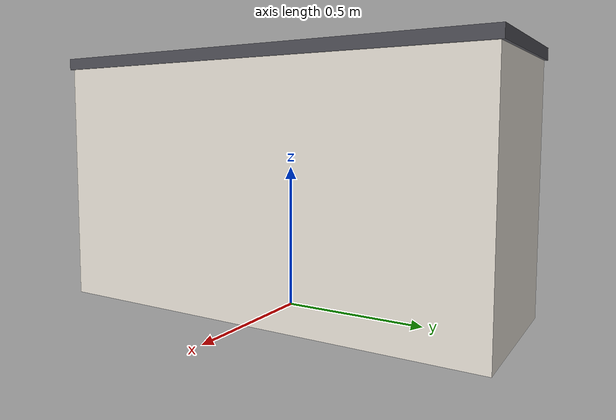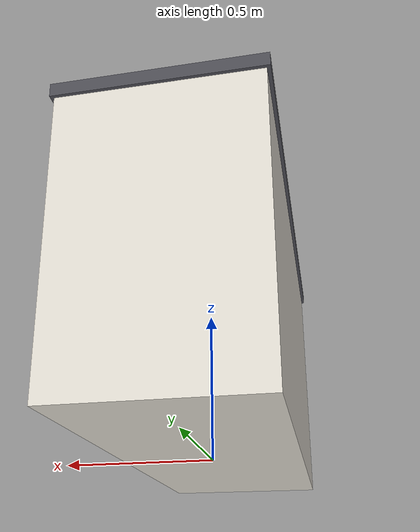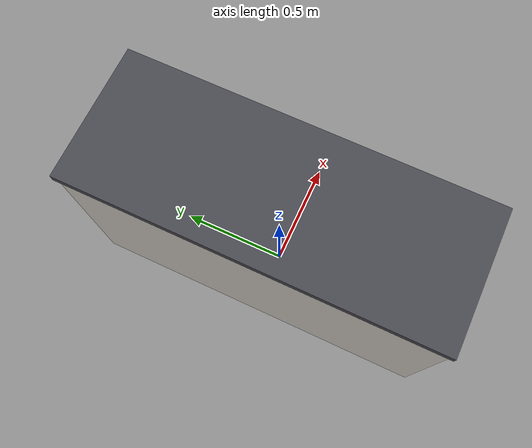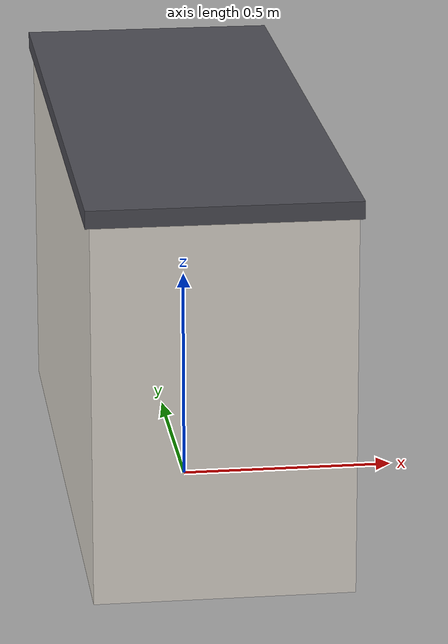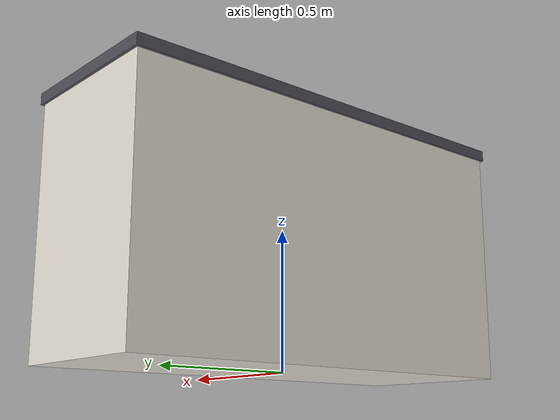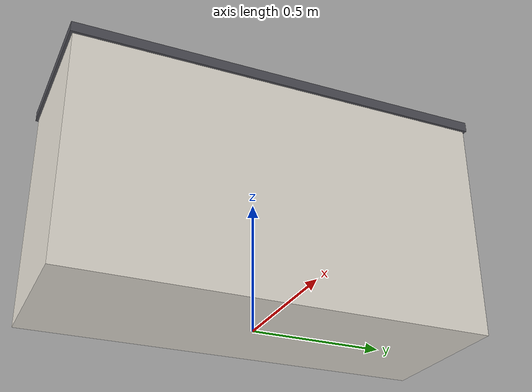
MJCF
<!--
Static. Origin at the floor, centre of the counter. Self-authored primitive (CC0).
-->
<mujoco model="counter">
  <asset>
    <material name="mat" rgba="0.88 0.86 0.82 1"/>
    <material name="worktop_mat" rgba="0.30 0.30 0.33 1"/>
  </asset>
  <worldbody>
    <body name="counter">
      <geom name="top" type="box" size="0.30 0.80 0.02" pos="0 0 0.88" material="worktop_mat" friction="0.8 0.01 0.0002" condim="4"/>
      <geom name="cabinet" type="box" size="0.29 0.79 0.43" pos="0 0 0.43" material="mat" friction="0.8 0.01 0.0002" condim="4"/>
    </body>
  </worldbody>
</mujoco>
